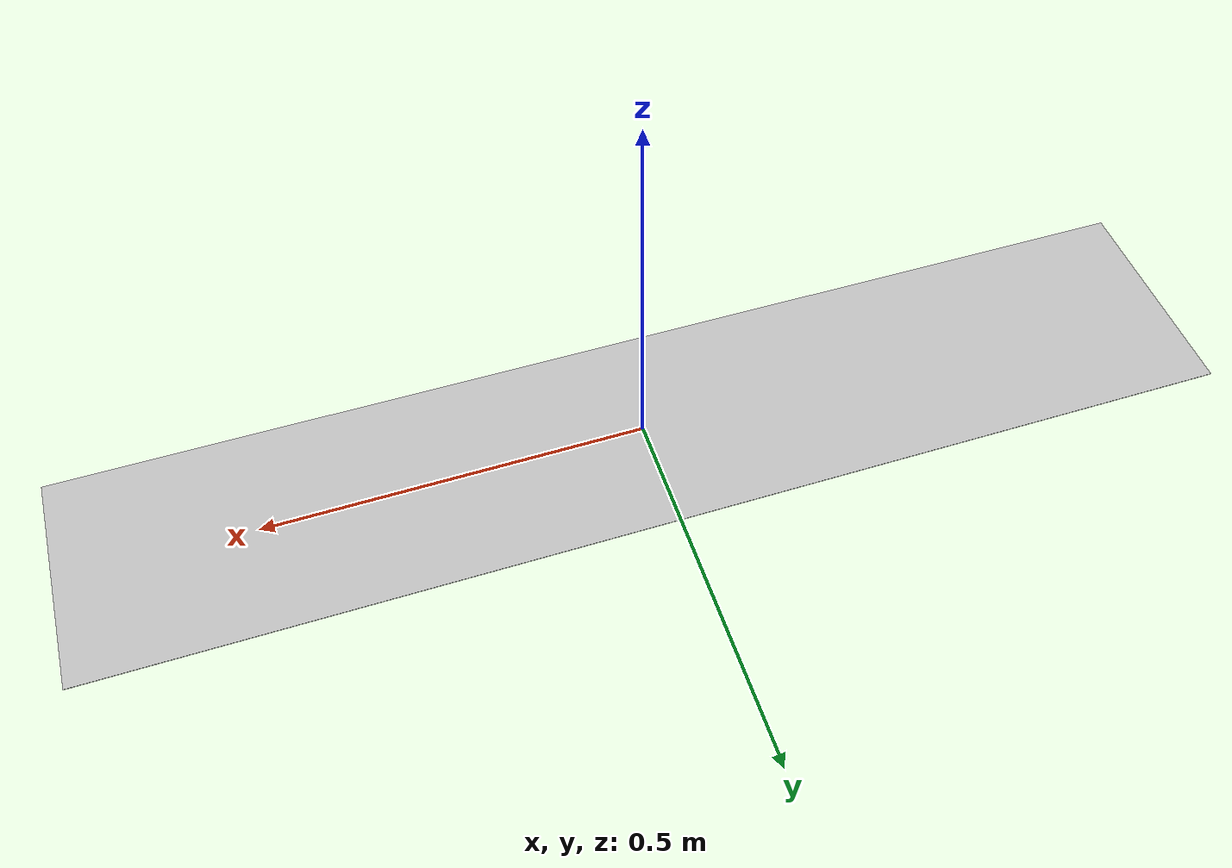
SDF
<?xml version="1.0"?>
<sdf version="1.5">
    <model name="line-fat-15">
        <static>true</static>
        <link name="line-fat-15_link">
            <pose>0.0 0.0 1e-3 0 0 0</pose>
            <visual name="visual_line-fat-15">
                <cast_shadows>false</cast_shadows>
                <geometry>
                    <box>
                        <size>1.5 0.3 1e-3</size>
                    </box>
                </geometry>
                <material>
                    <script>
                        <uri>model://line-fat-15/materials/scripts</uri>
                        <uri>model://line-fat-15/materials/textures</uri>
                        <name>line/line-15</name>
                    </script>
                </material>
            </visual>
        </link>
    </model>
</sdf>
